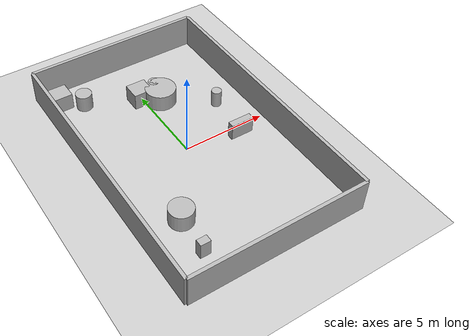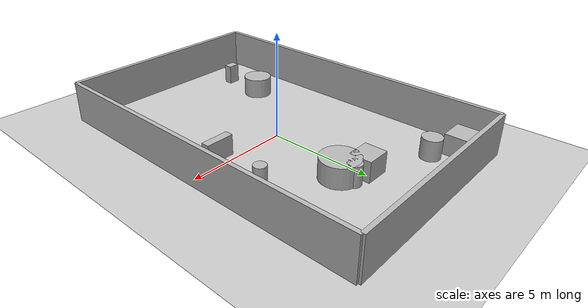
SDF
<?xml version="1.0"?>
<sdf version="1.6">
  <world name="env_77">

    <include><uri>model://ground_plane</uri></include>
    <include><uri>model://sun</uri></include>

    <!-- WALLS -->
    <model name="wall_north"><static>true</static><pose>0 8.251551342392379 1 0 0 0</pose>
      <link name="link"><collision name="collision">
        <geometry><box><size>10.544859528881553 0.2 2</size></box></geometry>
      </collision><visual name="visual">
        <geometry><box><size>10.544859528881553 0.2 2</size></box></geometry>
      </visual></link>
    </model>

    <model name="wall_south"><static>true</static><pose>0 -8.251551342392379 1 0 0 0</pose>
      <link name="link"><collision name="collision">
        <geometry><box><size>10.544859528881553 0.2 2</size></box></geometry>
      </collision><visual name="visual">
        <geometry><box><size>10.544859528881553 0.2 2</size></box></geometry>
      </visual></link>
    </model>

    <model name="wall_east"><static>true</static><pose>5.272429764440776 0 1 0 0 1.57</pose>
      <link name="link"><collision name="collision">
        <geometry><box><size>16.503102684784757 0.2 2</size></box></geometry>
      </collision><visual name="visual">
        <geometry><box><size>16.503102684784757 0.2 2</size></box></geometry>
      </visual></link>
    </model>

    <model name="wall_west"><static>true</static><pose>-5.272429764440776 0 1 0 0 1.57</pose>
      <link name="link"><collision name="collision">
        <geometry><box><size>16.503102684784757 0.2 2</size></box></geometry>
      </collision><visual name="visual">
        <geometry><box><size>16.503102684784757 0.2 2</size></box></geometry>
      </visual></link>
    </model>

    <!-- SENSOR -->

    <model name="lidar_sensor">
      <static>true</static>
      <pose>-4.741373956440725 -2.444807563043825 0.4 0 0 0</pose>
      <link name="link">
        <sensor name="lidar" type="ray">
          <pose>0 0 0 0 0 0</pose>
          <visualize>true</visualize>
          <always_on>true</always_on>
          <update_rate>10</update_rate>
          <ray>
            <scan><horizontal>
              <samples>90</samples>
              <resolution>1</resolution>
              <min_angle>-3.14159</min_angle>
              <max_angle>3.14159</max_angle>
            </horizontal></scan>
            <range><min>0.15</min><max>20.0</max><resolution>0.01</resolution></range>
          </ray>
          <plugin name="lidar_plugin" filename="liblidar_plugin.so"/>
        </sensor>
      </link>
    </model>

    <!-- OBSTACLES -->

    <model name="obstacle_0">
      <static>true</static>
      <pose>-2.912855427730002 -4.070876060621258 0.5 0 0 0</pose>
      <link name="link">
        <collision name="collision">
          <geometry><cylinder><radius>0.7</radius><length>1.0</length></cylinder></geometry>
        </collision>
        <visual name="visual">
          <geometry><cylinder><radius>0.7</radius><length>1.0</length></cylinder></geometry>
        </visual>
      </link>
    </model>

    <model name="obstacle_1">
      <static>true</static>
      <pose>0.8722075454796689 4.265968266797437 0.5 0 0 0</pose>
      <link name="link">
        <collision name="collision">
          <geometry><cylinder><radius>0.92</radius><length>1.0</length></cylinder></geometry>
        </collision>
        <visual name="visual">
          <geometry><cylinder><radius>0.92</radius><length>1.0</length></cylinder></geometry>
        </visual>
      </link>
    </model>

    <model name="obstacle_2">
      <static>true</static>
      <pose>0.8494849516763017 4.968666085696611 0.5 0 0 0</pose>
      <link name="link">
        <collision name="collision">
          <geometry><cylinder><radius>0.34</radius><length>1.0</length></cylinder></geometry>
        </collision>
        <visual name="visual">
          <geometry><cylinder><radius>0.34</radius><length>1.0</length></cylinder></geometry>
        </visual>
      </link>
    </model>

    <model name="obstacle_3">
      <static>true</static>
      <pose>-4.362936773584748 7.000009513463807 0.5 0 0 0</pose>
      <link name="link">
        <collision name="collision">
          <geometry><box><size>1.25 1.04 1.0</size></box></geometry>
        </collision>
        <visual name="visual">
          <geometry><box><size>1.25 1.04 1.0</size></box></geometry>
        </visual>
      </link>
    </model>

    <model name="obstacle_4">
      <static>true</static>
      <pose>-3.1465015708327195 6.21502486300594 0.5 0 0 0</pose>
      <link name="link">
        <collision name="collision">
          <geometry><cylinder><radius>0.48</radius><length>1.0</length></cylinder></geometry>
        </collision>
        <visual name="visual">
          <geometry><cylinder><radius>0.48</radius><length>1.0</length></cylinder></geometry>
        </visual>
      </link>
    </model>

    <model name="obstacle_5">
      <static>true</static>
      <pose>-0.17506884815086554 4.898929649965833 0.5 0 0 0</pose>
      <link name="link">
        <collision name="collision">
          <geometry><box><size>1.18 1.07 1.0</size></box></geometry>
        </collision>
        <visual name="visual">
          <geometry><box><size>1.18 1.07 1.0</size></box></geometry>
        </visual>
      </link>
    </model>

    <model name="obstacle_6">
      <static>true</static>
      <pose>-3.083794069741844 -6.319282467566909 0.5 0 0 0</pose>
      <link name="link">
        <collision name="collision">
          <geometry><box><size>0.6 0.42 1.0</size></box></geometry>
        </collision>
        <visual name="visual">
          <geometry><box><size>0.6 0.42 1.0</size></box></geometry>
        </visual>
      </link>
    </model>

    <model name="obstacle_7">
      <static>true</static>
      <pose>3.2343735679371637 -0.5074224215409524 0.5 0 0 0</pose>
      <link name="link">
        <collision name="collision">
          <geometry><box><size>1.39 0.4 1.0</size></box></geometry>
        </collision>
        <visual name="visual">
          <geometry><box><size>1.39 0.4 1.0</size></box></geometry>
        </visual>
      </link>
    </model>

    <model name="obstacle_8">
      <static>true</static>
      <pose>3.496178920595284 2.2910302971248786 0.5 0 0 0</pose>
      <link name="link">
        <collision name="collision">
          <geometry><cylinder><radius>0.3</radius><length>1.0</length></cylinder></geometry>
        </collision>
        <visual name="visual">
          <geometry><cylinder><radius>0.3</radius><length>1.0</length></cylinder></geometry>
        </visual>
      </link>
    </model>

  </world>
</sdf>
